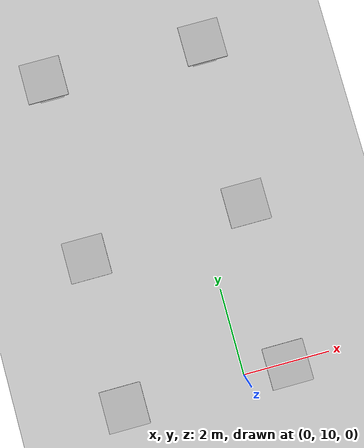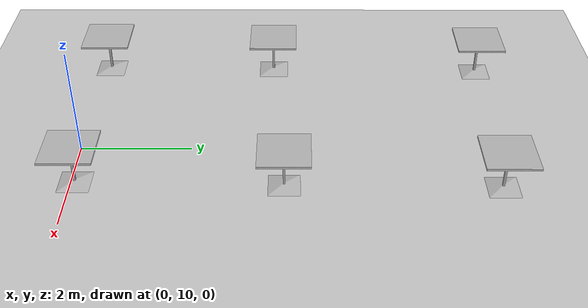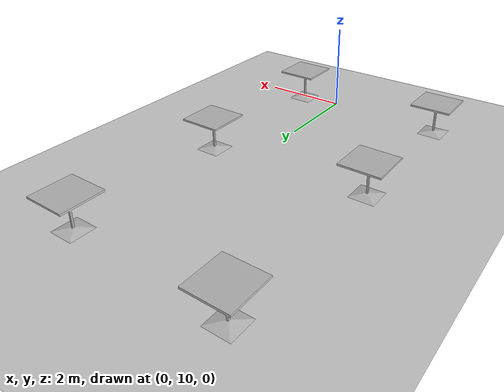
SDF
<sdf version="1.7">
 <world name="default">
  <light name="sun" type="directional">
   <pose>0 0 10 0 -0 0</pose>
   <diffuse>0.8 0.8 0.8 1</diffuse>
   <specular>0.2 0.2 0.2 1</specular>
   <attenuation>
    <range>1000</range>
    <constant>0.9</constant>
    <linear>0.01</linear>
    <quadratic>0.001</quadratic>
   </attenuation>
   <direction>-0.5 0.1 -0.9</direction>
   <spot><inner_angle>0</inner_angle><outer_angle>0</outer_angle><falloff>0</falloff></spot>
  </light>
  <model name="ground_plane">
   <static>1</static>
   <link name="link">
    <collision name="collision">
     <geometry><plane><normal>0 0 1</normal><size>100 100</size></plane></geometry>
     <surface>
      <contact><collide_bitmask>65535</collide_bitmask></contact>
      <friction><ode><mu>100</mu><mu2>50</mu2></ode></friction>
     </surface>
    </collision>
    <visual name="visual">
     <cast_shadows>0</cast_shadows>
     <geometry><plane><normal>0 0 1</normal><size>100 100</size></plane></geometry>
     <material>
      <script><uri>file://media/materials/scripts/gazebo.material</uri><name>Gazebo/Grey</name></script>
     </material>
    </visual>
   </link>
  </model>
  <gravity>0 0 -9.8</gravity>
  <magnetic_field>6e-06 2.3e-05 -4.2e-05</magnetic_field>
  <atmosphere type="adiabatic"/>
  <physics type="ode">
   <max_step_size>0.001</max_step_size>
   <real_time_factor>1</real_time_factor>
   <real_time_update_rate>1000</real_time_update_rate>
  </physics>
  <scene><ambient>0.4 0.4 0.4 1</ambient><background>0.7 0.7 0.7 1</background><shadows>1</shadows></scene>
  <spherical_coordinates>
   <surface_model>EARTH_WGS84</surface_model>
   <latitude_deg>0</latitude_deg>
   <longitude_deg>0</longitude_deg>
   <elevation>0</elevation>
   <heading_deg>0</heading_deg>
  </spherical_coordinates>
  <model name="cafe_table">
   <static>1</static>
   <link name="link">
    <collision name="surface">
     <pose>0 0 0.755 0 -0 0</pose>
     <geometry><box><size>0.913 0.913 0.04</size></box></geometry>
    </collision>
    <collision name="column">
     <pose>0 0 0.37 0 -0 0</pose>
     <geometry><box><size>0.042 0.042 0.74</size></box></geometry>
    </collision>
    <collision name="base">
     <pose>0 0 0.02 0 -0 0</pose>
     <geometry><box><size>0.56 0.56 0.04</size></box></geometry>
    </collision>
    <visual name="visual">
     <geometry><mesh><uri>model://cafe_table/meshes/cafe_table.dae</uri></mesh></geometry>
    </visual>
   </link>
   <pose>1.0674 17.4409 0 0 -0 0</pose>
  </model>
  <model name="cafe_table_clone">
   <static>1</static>
   <link name="link">
    <collision name="surface">
     <pose>0 0 0.755 0 -0 0</pose>
     <geometry><box><size>0.913 0.913 0.04</size></box></geometry>
    </collision>
    <collision name="column">
     <pose>0 0 0.37 0 -0 0</pose>
     <geometry><box><size>0.042 0.042 0.74</size></box></geometry>
    </collision>
    <collision name="base">
     <pose>0 0 0.02 0 -0 0</pose>
     <geometry><box><size>0.56 0.56 0.04</size></box></geometry>
    </collision>
    <visual name="visual">
     <geometry><mesh><uri>model://cafe_table/meshes/cafe_table.dae</uri></mesh></geometry>
    </visual>
   </link>
   <pose>-2.57958 17.5445 0 0 -0 0</pose>
  </model>
  <model name="cafe_table_clone_0">
   <static>1</static>
   <link name="link">
    <collision name="surface">
     <pose>0 0 0.755 0 -0 0</pose>
     <geometry><box><size>0.913 0.913 0.04</size></box></geometry>
    </collision>
    <collision name="column">
     <pose>0 0 0.37 0 -0 0</pose>
     <geometry><box><size>0.042 0.042 0.74</size></box></geometry>
    </collision>
    <collision name="base">
     <pose>0 0 0.02 0 -0 0</pose>
     <geometry><box><size>0.56 0.56 0.04</size></box></geometry>
    </collision>
    <visual name="visual">
     <geometry><mesh><uri>model://cafe_table/meshes/cafe_table.dae</uri></mesh></geometry>
    </visual>
   </link>
   <pose>-2.67686 13.444 0 0 -0 0</pose>
  </model>
  <model name="cafe_table_clone_1">
   <static>1</static>
   <link name="link">
    <collision name="surface">
     <pose>0 0 0.755 0 -0 0</pose>
     <geometry><box><size>0.913 0.913 0.04</size></box></geometry>
    </collision>
    <collision name="column">
     <pose>0 0 0.37 0 -0 0</pose>
     <geometry><box><size>0.042 0.042 0.74</size></box></geometry>
    </collision>
    <collision name="base">
     <pose>0 0 0.02 0 -0 0</pose>
     <geometry><box><size>0.56 0.56 0.04</size></box></geometry>
    </collision>
    <visual name="visual">
     <geometry><mesh><uri>model://cafe_table/meshes/cafe_table.dae</uri></mesh></geometry>
    </visual>
   </link>
   <pose>1.02233 13.6875 0 0 -0 0</pose>
  </model>
  <model name="cafe_table_clone_2">
   <static>1</static>
   <link name="link">
    <collision name="surface">
     <pose>0 0 0.755 0 -0 0</pose>
     <geometry><box><size>0.913 0.913 0.04</size></box></geometry>
    </collision>
    <collision name="column">
     <pose>0 0 0.37 0 -0 0</pose>
     <geometry><box><size>0.042 0.042 0.74</size></box></geometry>
    </collision>
    <collision name="base">
     <pose>0 0 0.02 0 -0 0</pose>
     <geometry><box><size>0.56 0.56 0.04</size></box></geometry>
    </collision>
    <visual name="visual">
     <geometry><mesh><uri>model://cafe_table/meshes/cafe_table.dae</uri></mesh></geometry>
    </visual>
   </link>
   <pose>-2.70797 10.1141 0 0 -0 0</pose>
  </model>
  <model name="cafe_table_clone_3">
   <static>1</static>
   <link name="link">
    <collision name="surface">
     <pose>0 0 0.755 0 -0 0</pose>
     <geometry><box><size>0.913 0.913 0.04</size></box></geometry>
    </collision>
    <collision name="column">
     <pose>0 0 0.37 0 -0 0</pose>
     <geometry><box><size>0.042 0.042 0.74</size></box></geometry>
    </collision>
    <collision name="base">
     <pose>0 0 0.02 0 -0 0</pose>
     <geometry><box><size>0.56 0.56 0.04</size></box></geometry>
    </collision>
    <visual name="visual">
     <geometry><mesh><uri>model://cafe_table/meshes/cafe_table.dae</uri></mesh></geometry>
    </visual>
   </link>
   <pose>0.938199 10.0755 0 0 -0 0</pose>
  </model>
 </world>
</sdf>
